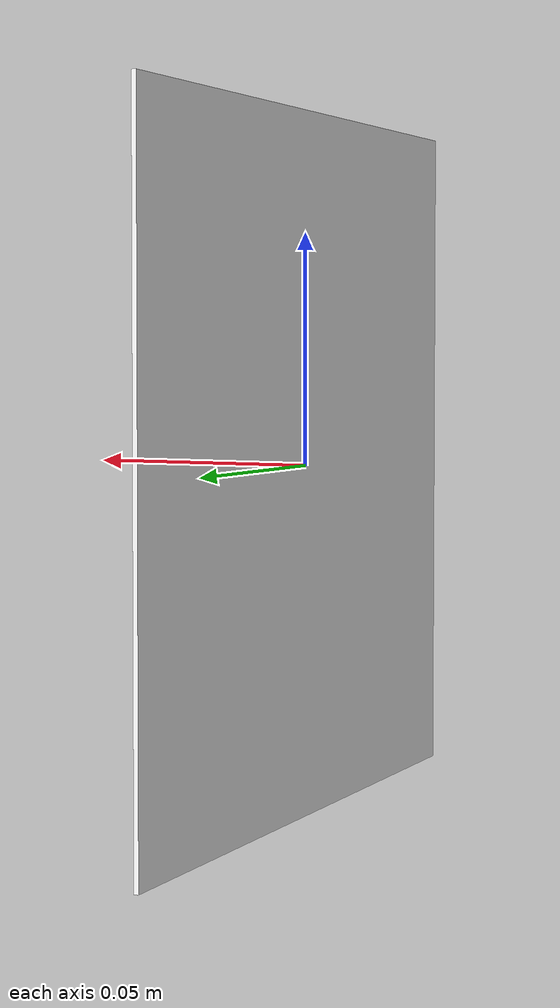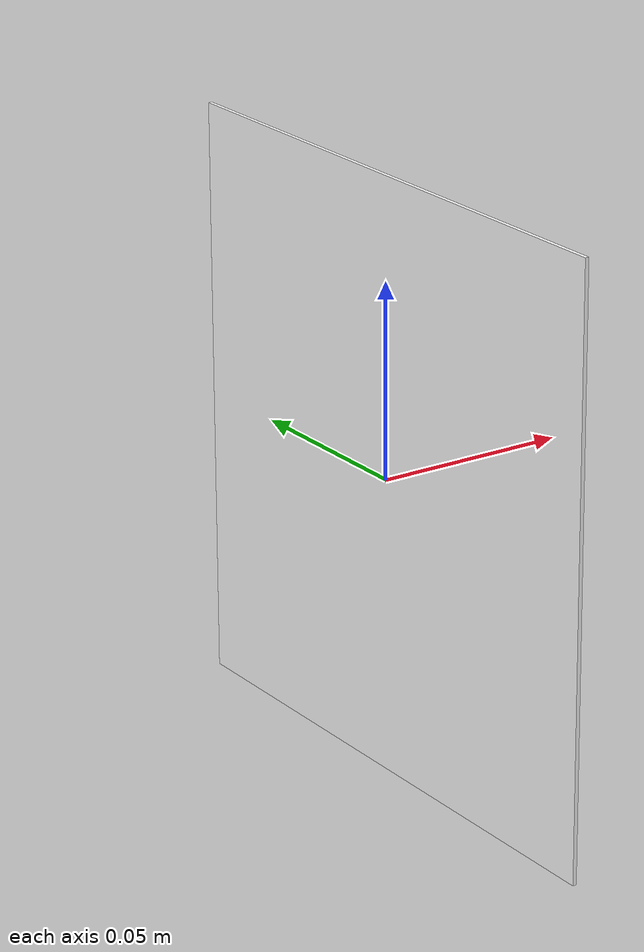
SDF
<?xml version="1.0"?>
<sdf version="1.9">
  <model name="aruco_marker">
    <static>true</static>
    <link name="marker_link">
      <pose>0 0 0 0 0 0</pose>

      <visual name="visual">
        <geometry>
          <box>
            <size>0.001 0.1524 0.1524</size>
          </box>
        </geometry>
        <material>
          <ambient>1 1 1 1</ambient>
          <diffuse>1 1 1 1</diffuse>
          <pbr>
            <metal>
              <albedo_map>model://aruco_marker/materials/textures/aruco_0.png</albedo_map>
            </metal>
          </pbr>
        </material>
      </visual>

      <!-- Thin collision for the marker -->
      <collision name="collision">
        <geometry>
          <box>
            <size>0.001 0.1524 0.1524</size>
          </box>
        </geometry>
      </collision>
    </link>
  </model>
</sdf>
